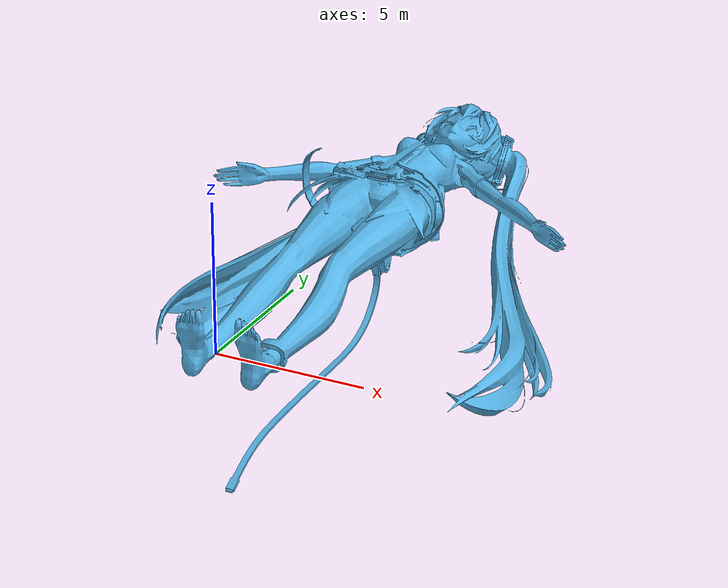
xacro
<?xml version="1.0"?>
<robot name="miku" xmlns:xacro="http://www.ros.org/wiki/xacro">
    <xacro:include filename="$(find urdf_test)/models/define.xacro"/>
    <xacro:include filename="$(find urdf_test)/models/config.xacro"/>

    <link name="root">
        <origin rpy="0 0 0" xyz="0 0 0"/>
    </link>
    <joint name="joint" type="fixed">
        <origin rpy="0 0 0" xyz="0 0 0"/>
        <parent link="root"/>
        <child link="mmd"/>
    </joint>

    <link name="mmd">
        <origin rpy="0 0 0" xyz="0 0 0"/>
        <visual>
            <geometry>
                <mesh filename="${robotPackagePath}/${modelDataResourceFolder}/tda_style_miku/tda_style_miku.dae"/>
            </geometry>
        </visual>
    </link>

</robot>

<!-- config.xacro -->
<robot>
    <property name="robotPackagePath" value="package://urdf_test/models"/>
    <property name="modelDataResourceFolder" value="daes"/>
</robot>
